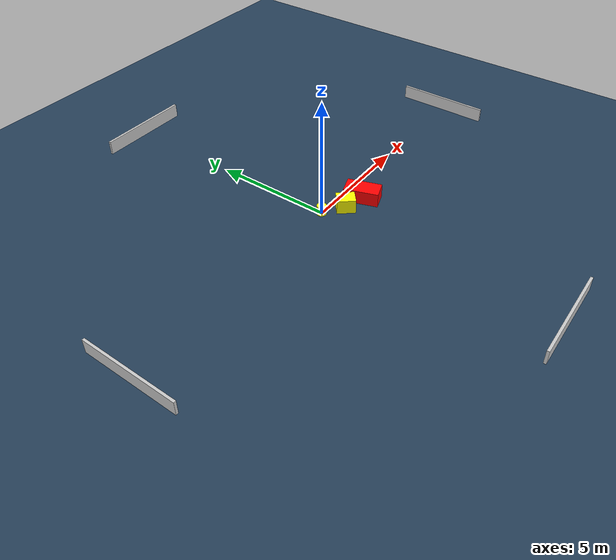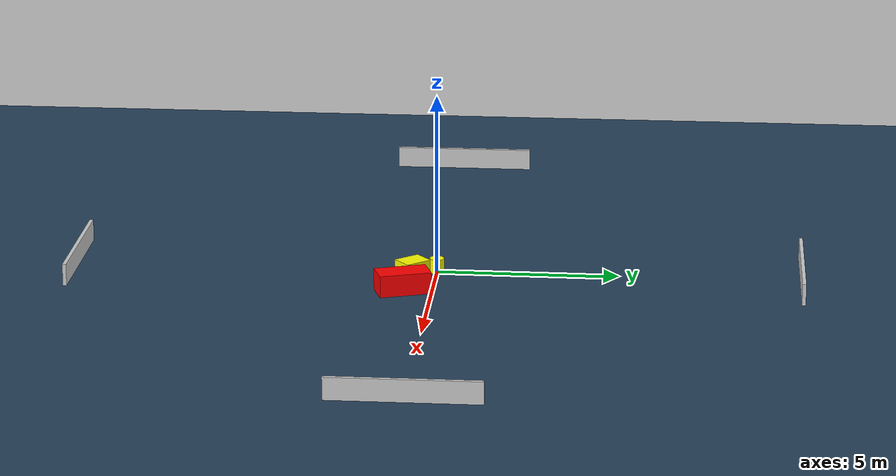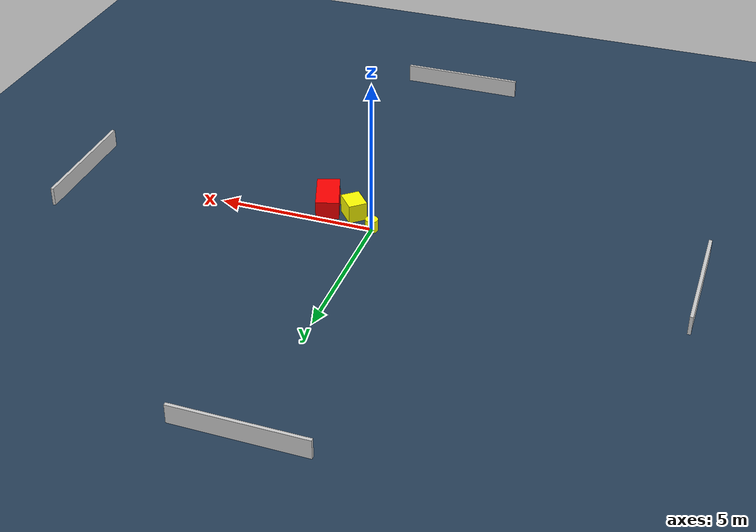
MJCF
<?xml version="1.0" ?>
<mujoco model="generated_environment">
  <option timestep="0.01" integrator="RK4" cone="elliptic"/>
  <default>
    <geom density="1"/>
  </default>
  <asset>
    <texture builtin="gradient" height="3072" name="skybox" rgb1="0.3 0.5 0.7" rgb2="0 0 0" type="skybox" width="512"/>
    <texture builtin="checker" height="300" name="groundplane" rgb1="0.2 0.3 0.4" rgb2="0.1 0.2 0.3" type="2d" width="300"/>
    <material name="groundplane" reflectance="0.2" texrepeat="5 5" texture="groundplane"/>
  </asset>
  <worldbody>
    <light dir="0 0 -1" directional="true" pos="0 0 1.5"/>
    <geom condim="3" friction="0.5 0.005 0.001" material="groundplane" name="floor" pos="0 0 0" size="0 0 0.05" type="plane"/>
    <body name="walls">
      <geom name="wall_1" condim="4" pos="-10.0 0.0 0.3" rgba="0.800000011920929 0.800000011920929 0.800000011920929 1.0" size="0.05 2.0 0.3" type="box"/>
      <geom name="wall_2" condim="4" pos="10.0 0.0 0.3" rgba="0.800000011920929 0.800000011920929 0.800000011920929 1.0" size="0.05 2.0 0.3" type="box"/>
      <geom name="wall_3" condim="4" pos="0.0 -10.0 0.3" rgba="0.800000011920929 0.800000011920929 0.800000011920929 1.0" size="2.0 0.05 0.3" type="box"/>
      <geom name="wall_4" condim="4" pos="0.0 10.0 0.3" rgba="0.800000011920929 0.800000011920929 0.800000011920929 1.0" size="2.0 0.05 0.3" type="box"/>
    </body>
    <body name="robot">
      <joint name="joint_x" type="slide" pos="0 0 0" axis="1 0 0"/>
      <joint name="joint_y" type="slide" pos="0 0 0" axis="0 1 0"/>
      <geom name="robot" type="cylinder" pos="0.0 0.0 0.2" size="0.2 0.2 0.0" mass="5.0" friction="1.0 0.005 0.0001" condim="4" rgba="1.0 1.0 0.0 1.0"/>
    </body>
    <body name="obstacle_1_movable">
      <geom name="obstacle_1_movable" condim="4" pos="0.7980330582390759 -0.6000656464913157 0.3" euler="0 0 220.40665639149316" friction="0.0 0.005 0.001" rgba="1.0 1.0 0.0 1.0" size="0.29942935319302566 0.3794168886989773 0.3" type="box" mass="0.1"/>
      <joint type="free"/>
    </body>
    <body name="obstacle_2_static">
      <geom name="obstacle_2_static" condim="4" pos="1.7390816232938808 -0.788126178494136 0.3" euler="0 0 18.835504190957554" friction="0.0 0.005 0.001" rgba="1.0 0.0 0.0 1.0" size="0.36653049637517887 0.7145815015588981 0.3" type="box"/>
    </body>
  </worldbody>
  <actuator>
    <motor name="actuator_x" joint="joint_x" gear="1" ctrlrange="-1 1"/>
    <motor name="actuator_y" joint="joint_y" gear="1" ctrlrange="-1 1"/>
  </actuator>
</mujoco>
